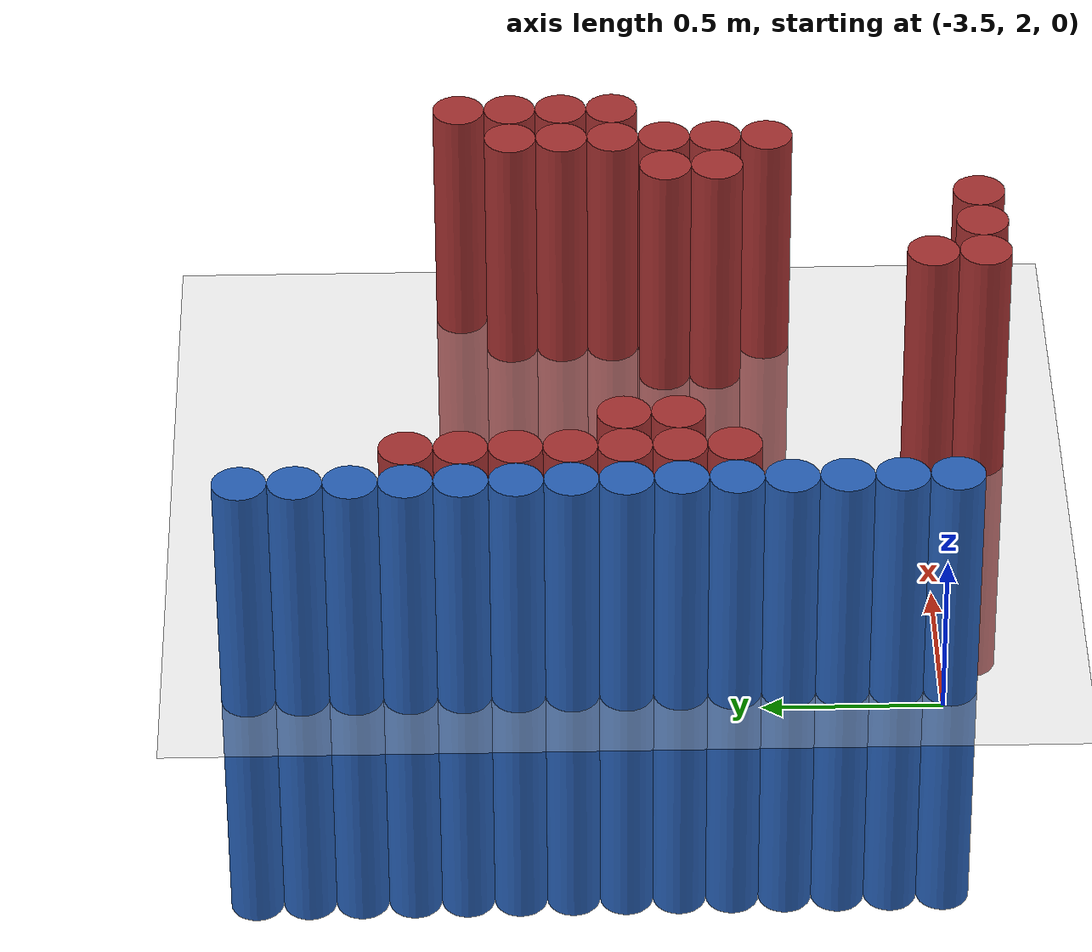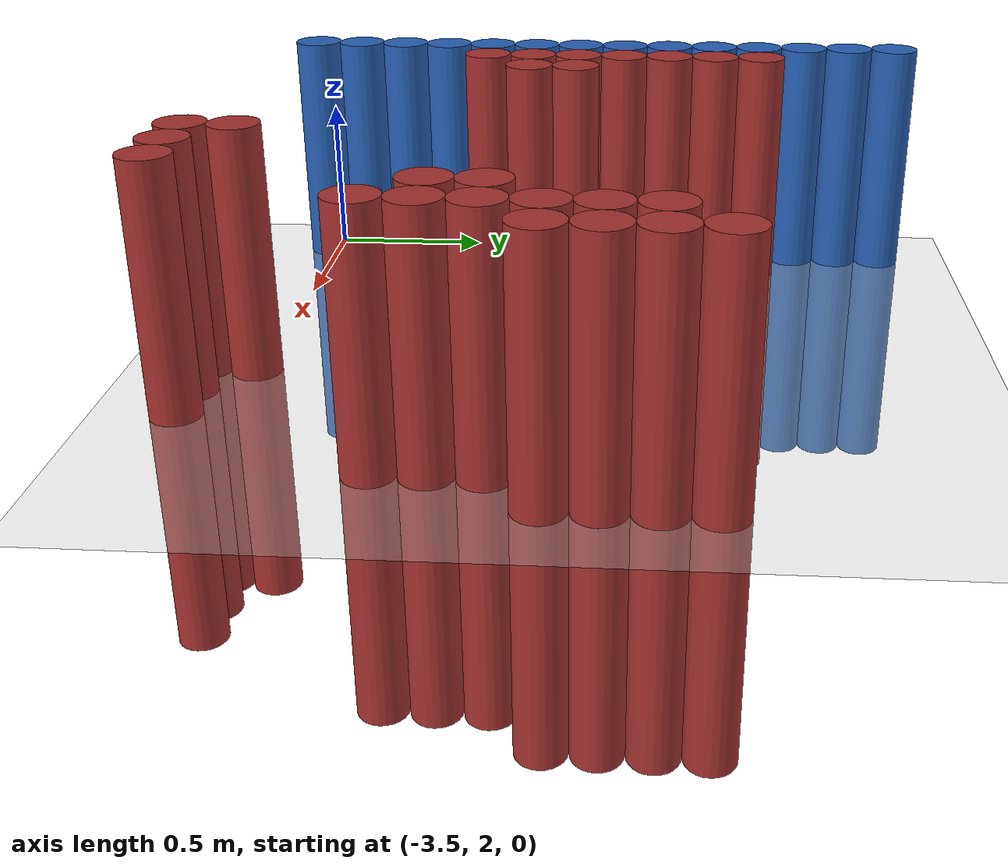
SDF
<sdf version="1.6">
 <world name="default">
  <model name="ground_plane">
   <static>1</static>
   <link name="link">
    <collision name="collision">
     <geometry><plane><normal>0 0 1</normal><size>100 100</size></plane></geometry>
     <surface><friction><ode><mu>100</mu><mu2>50</mu2></ode></friction></surface>
    </collision>
    <visual name="visual">
     <cast_shadows>0</cast_shadows>
     <geometry><plane><normal>0 0 1</normal><size>100 100</size></plane></geometry>
     <material>
      <script><uri>file://media/materials/scripts/gazebo.material</uri><name>Gazebo/Grey</name></script>
     </material>
    </visual>
   </link>
  </model>
  <model name="unit_cylinder_141">
   <static>1</static>
   <pose>-3.425000 1.975000 0.000000 0.000000 0.000000 0.000000</pose>
   <link name="link">
    <inertial>
     <mass>1</mass>
     <inertia><ixx>0.145833</ixx><ixy>0</ixy><ixz>0</ixz><iyy>0.145833</iyy><iyz>0</iyz><izz>0.125</izz></inertia>
    </inertial>
    <collision name="collision">
     <geometry><cylinder><radius>0.075000</radius><length>1.5</length></cylinder></geometry>
    </collision>
    <visual name="visual">
     <geometry><cylinder><radius>0.075000</radius><length>1.5</length></cylinder></geometry>
     <material>
      <ambient>0.152000 0.379000 0.720000 1</ambient>
      <diffuse>0.152000 0.379000 0.720000 1</diffuse>
     </material>
     <material>
      <script><name>Gazebo/Grey</name><uri>file://media/materials/scripts/gazebo.material</uri></script>
     </material>
    </visual>
   </link>
  </model>
  <model name="unit_cylinder_143">
   <static>1</static>
   <pose>-3.425000 2.125000 0.000000 0.000000 0.000000 0.000000</pose>
   <link name="link">
    <inertial>
     <mass>1</mass>
     <inertia><ixx>0.145833</ixx><ixy>0</ixy><ixz>0</ixz><iyy>0.145833</iyy><iyz>0</iyz><izz>0.125</izz></inertia>
    </inertial>
    <collision name="collision">
     <geometry><cylinder><radius>0.075000</radius><length>1.5</length></cylinder></geometry>
    </collision>
    <visual name="visual">
     <geometry><cylinder><radius>0.075000</radius><length>1.5</length></cylinder></geometry>
     <material>
      <ambient>0.152000 0.379000 0.720000 1</ambient>
      <diffuse>0.152000 0.379000 0.720000 1</diffuse>
     </material>
     <material>
      <script><name>Gazebo/Grey</name><uri>file://media/materials/scripts/gazebo.material</uri></script>
     </material>
    </visual>
   </link>
  </model>
  <model name="unit_cylinder_145">
   <static>1</static>
   <pose>-3.425000 2.275000 0.000000 0.000000 0.000000 0.000000</pose>
   <link name="link">
    <inertial>
     <mass>1</mass>
     <inertia><ixx>0.145833</ixx><ixy>0</ixy><ixz>0</ixz><iyy>0.145833</iyy><iyz>0</iyz><izz>0.125</izz></inertia>
    </inertial>
    <collision name="collision">
     <geometry><cylinder><radius>0.075000</radius><length>1.5</length></cylinder></geometry>
    </collision>
    <visual name="visual">
     <geometry><cylinder><radius>0.075000</radius><length>1.5</length></cylinder></geometry>
     <material>
      <ambient>0.152000 0.379000 0.720000 1</ambient>
      <diffuse>0.152000 0.379000 0.720000 1</diffuse>
     </material>
     <material>
      <script><name>Gazebo/Grey</name><uri>file://media/materials/scripts/gazebo.material</uri></script>
     </material>
    </visual>
   </link>
  </model>
  <model name="unit_cylinder_147">
   <static>1</static>
   <pose>-3.425000 2.425000 0.000000 0.000000 0.000000 0.000000</pose>
   <link name="link">
    <inertial>
     <mass>1</mass>
     <inertia><ixx>0.145833</ixx><ixy>0</ixy><ixz>0</ixz><iyy>0.145833</iyy><iyz>0</iyz><izz>0.125</izz></inertia>
    </inertial>
    <collision name="collision">
     <geometry><cylinder><radius>0.075000</radius><length>1.5</length></cylinder></geometry>
    </collision>
    <visual name="visual">
     <geometry><cylinder><radius>0.075000</radius><length>1.5</length></cylinder></geometry>
     <material>
      <ambient>0.152000 0.379000 0.720000 1</ambient>
      <diffuse>0.152000 0.379000 0.720000 1</diffuse>
     </material>
     <material>
      <script><name>Gazebo/Grey</name><uri>file://media/materials/scripts/gazebo.material</uri></script>
     </material>
    </visual>
   </link>
  </model>
  <model name="unit_cylinder_149">
   <static>1</static>
   <pose>-3.425000 2.575000 0.000000 0.000000 0.000000 0.000000</pose>
   <link name="link">
    <inertial>
     <mass>1</mass>
     <inertia><ixx>0.145833</ixx><ixy>0</ixy><ixz>0</ixz><iyy>0.145833</iyy><iyz>0</iyz><izz>0.125</izz></inertia>
    </inertial>
    <collision name="collision">
     <geometry><cylinder><radius>0.075000</radius><length>1.5</length></cylinder></geometry>
    </collision>
    <visual name="visual">
     <geometry><cylinder><radius>0.075000</radius><length>1.5</length></cylinder></geometry>
     <material>
      <ambient>0.152000 0.379000 0.720000 1</ambient>
      <diffuse>0.152000 0.379000 0.720000 1</diffuse>
     </material>
     <material>
      <script><name>Gazebo/Grey</name><uri>file://media/materials/scripts/gazebo.material</uri></script>
     </material>
    </visual>
   </link>
  </model>
  <model name="unit_cylinder_151">
   <static>1</static>
   <pose>-3.425000 2.725000 0.000000 0.000000 0.000000 0.000000</pose>
   <link name="link">
    <inertial>
     <mass>1</mass>
     <inertia><ixx>0.145833</ixx><ixy>0</ixy><ixz>0</ixz><iyy>0.145833</iyy><iyz>0</iyz><izz>0.125</izz></inertia>
    </inertial>
    <collision name="collision">
     <geometry><cylinder><radius>0.075000</radius><length>1.5</length></cylinder></geometry>
    </collision>
    <visual name="visual">
     <geometry><cylinder><radius>0.075000</radius><length>1.5</length></cylinder></geometry>
     <material>
      <ambient>0.152000 0.379000 0.720000 1</ambient>
      <diffuse>0.152000 0.379000 0.720000 1</diffuse>
     </material>
     <material>
      <script><name>Gazebo/Grey</name><uri>file://media/materials/scripts/gazebo.material</uri></script>
     </material>
    </visual>
   </link>
  </model>
  <model name="unit_cylinder_153">
   <static>1</static>
   <pose>-3.425000 2.875000 0.000000 0.000000 0.000000 0.000000</pose>
   <link name="link">
    <inertial>
     <mass>1</mass>
     <inertia><ixx>0.145833</ixx><ixy>0</ixy><ixz>0</ixz><iyy>0.145833</iyy><iyz>0</iyz><izz>0.125</izz></inertia>
    </inertial>
    <collision name="collision">
     <geometry><cylinder><radius>0.075000</radius><length>1.5</length></cylinder></geometry>
    </collision>
    <visual name="visual">
     <geometry><cylinder><radius>0.075000</radius><length>1.5</length></cylinder></geometry>
     <material>
      <ambient>0.152000 0.379000 0.720000 1</ambient>
      <diffuse>0.152000 0.379000 0.720000 1</diffuse>
     </material>
     <material>
      <script><name>Gazebo/Grey</name><uri>file://media/materials/scripts/gazebo.material</uri></script>
     </material>
    </visual>
   </link>
  </model>
  <model name="unit_cylinder_155">
   <static>1</static>
   <pose>-3.425000 3.025000 0.000000 0.000000 0.000000 0.000000</pose>
   <link name="link">
    <inertial>
     <mass>1</mass>
     <inertia><ixx>0.145833</ixx><ixy>0</ixy><ixz>0</ixz><iyy>0.145833</iyy><iyz>0</iyz><izz>0.125</izz></inertia>
    </inertial>
    <collision name="collision">
     <geometry><cylinder><radius>0.075000</radius><length>1.5</length></cylinder></geometry>
    </collision>
    <visual name="visual">
     <geometry><cylinder><radius>0.075000</radius><length>1.5</length></cylinder></geometry>
     <material>
      <ambient>0.152000 0.379000 0.720000 1</ambient>
      <diffuse>0.152000 0.379000 0.720000 1</diffuse>
     </material>
     <material>
      <script><name>Gazebo/Grey</name><uri>file://media/materials/scripts/gazebo.material</uri></script>
     </material>
    </visual>
   </link>
  </model>
  <model name="unit_cylinder_157">
   <static>1</static>
   <pose>-3.425000 3.175000 0.000000 0.000000 0.000000 0.000000</pose>
   <link name="link">
    <inertial>
     <mass>1</mass>
     <inertia><ixx>0.145833</ixx><ixy>0</ixy><ixz>0</ixz><iyy>0.145833</iyy><iyz>0</iyz><izz>0.125</izz></inertia>
    </inertial>
    <collision name="collision">
     <geometry><cylinder><radius>0.075000</radius><length>1.5</length></cylinder></geometry>
    </collision>
    <visual name="visual">
     <geometry><cylinder><radius>0.075000</radius><length>1.5</length></cylinder></geometry>
     <material>
      <ambient>0.152000 0.379000 0.720000 1</ambient>
      <diffuse>0.152000 0.379000 0.720000 1</diffuse>
     </material>
     <material>
      <script><name>Gazebo/Grey</name><uri>file://media/materials/scripts/gazebo.material</uri></script>
     </material>
    </visual>
   </link>
  </model>
  <model name="unit_cylinder_159">
   <static>1</static>
   <pose>-3.425000 3.325000 0.000000 0.000000 0.000000 0.000000</pose>
   <link name="link">
    <inertial>
     <mass>1</mass>
     <inertia><ixx>0.145833</ixx><ixy>0</ixy><ixz>0</ixz><iyy>0.145833</iyy><iyz>0</iyz><izz>0.125</izz></inertia>
    </inertial>
    <collision name="collision">
     <geometry><cylinder><radius>0.075000</radius><length>1.5</length></cylinder></geometry>
    </collision>
    <visual name="visual">
     <geometry><cylinder><radius>0.075000</radius><length>1.5</length></cylinder></geometry>
     <material>
      <ambient>0.152000 0.379000 0.720000 1</ambient>
      <diffuse>0.152000 0.379000 0.720000 1</diffuse>
     </material>
     <material>
      <script><name>Gazebo/Grey</name><uri>file://media/materials/scripts/gazebo.material</uri></script>
     </material>
    </visual>
   </link>
  </model>
  <model name="unit_cylinder_161">
   <static>1</static>
   <pose>-3.425000 3.475000 0.000000 0.000000 0.000000 0.000000</pose>
   <link name="link">
    <inertial>
     <mass>1</mass>
     <inertia><ixx>0.145833</ixx><ixy>0</ixy><ixz>0</ixz><iyy>0.145833</iyy><iyz>0</iyz><izz>0.125</izz></inertia>
    </inertial>
    <collision name="collision">
     <geometry><cylinder><radius>0.075000</radius><length>1.5</length></cylinder></geometry>
    </collision>
    <visual name="visual">
     <geometry><cylinder><radius>0.075000</radius><length>1.5</length></cylinder></geometry>
     <material>
      <ambient>0.152000 0.379000 0.720000 1</ambient>
      <diffuse>0.152000 0.379000 0.720000 1</diffuse>
     </material>
     <material>
      <script><name>Gazebo/Grey</name><uri>file://media/materials/scripts/gazebo.material</uri></script>
     </material>
    </visual>
   </link>
  </model>
  <model name="unit_cylinder_163">
   <static>1</static>
   <pose>-3.425000 3.625000 0.000000 0.000000 0.000000 0.000000</pose>
   <link name="link">
    <inertial>
     <mass>1</mass>
     <inertia><ixx>0.145833</ixx><ixy>0</ixy><ixz>0</ixz><iyy>0.145833</iyy><iyz>0</iyz><izz>0.125</izz></inertia>
    </inertial>
    <collision name="collision">
     <geometry><cylinder><radius>0.075000</radius><length>1.5</length></cylinder></geometry>
    </collision>
    <visual name="visual">
     <geometry><cylinder><radius>0.075000</radius><length>1.5</length></cylinder></geometry>
     <material>
      <ambient>0.152000 0.379000 0.720000 1</ambient>
      <diffuse>0.152000 0.379000 0.720000 1</diffuse>
     </material>
     <material>
      <script><name>Gazebo/Grey</name><uri>file://media/materials/scripts/gazebo.material</uri></script>
     </material>
    </visual>
   </link>
  </model>
  <model name="unit_cylinder_165">
   <static>1</static>
   <pose>-3.425000 3.775000 0.000000 0.000000 0.000000 0.000000</pose>
   <link name="link">
    <inertial>
     <mass>1</mass>
     <inertia><ixx>0.145833</ixx><ixy>0</ixy><ixz>0</ixz><iyy>0.145833</iyy><iyz>0</iyz><izz>0.125</izz></inertia>
    </inertial>
    <collision name="collision">
     <geometry><cylinder><radius>0.075000</radius><length>1.5</length></cylinder></geometry>
    </collision>
    <visual name="visual">
     <geometry><cylinder><radius>0.075000</radius><length>1.5</length></cylinder></geometry>
     <material>
      <ambient>0.152000 0.379000 0.720000 1</ambient>
      <diffuse>0.152000 0.379000 0.720000 1</diffuse>
     </material>
     <material>
      <script><name>Gazebo/Grey</name><uri>file://media/materials/scripts/gazebo.material</uri></script>
     </material>
    </visual>
   </link>
  </model>
  <model name="unit_cylinder_167">
   <static>1</static>
   <pose>-3.425000 3.925000 0.000000 0.000000 0.000000 0.000000</pose>
   <link name="link">
    <inertial>
     <mass>1</mass>
     <inertia><ixx>0.145833</ixx><ixy>0</ixy><ixz>0</ixz><iyy>0.145833</iyy><iyz>0</iyz><izz>0.125</izz></inertia>
    </inertial>
    <collision name="collision">
     <geometry><cylinder><radius>0.075000</radius><length>1.5</length></cylinder></geometry>
    </collision>
    <visual name="visual">
     <geometry><cylinder><radius>0.075000</radius><length>1.5</length></cylinder></geometry>
     <material>
      <ambient>0.152000 0.379000 0.720000 1</ambient>
      <diffuse>0.152000 0.379000 0.720000 1</diffuse>
     </material>
     <material>
      <script><name>Gazebo/Grey</name><uri>file://media/materials/scripts/gazebo.material</uri></script>
     </material>
    </visual>
   </link>
  </model>
  <model name="unit_cylinder_234">
   <static>1</static>
   <pose>-3.425000 1.975000 0.000000 0.000000 0.000000 0.000000</pose>
   <link name="link">
    <inertial>
     <mass>1</mass>
     <inertia><ixx>0.145833</ixx><ixy>0</ixy><ixz>0</ixz><iyy>0.145833</iyy><iyz>0</iyz><izz>0.125</izz></inertia>
    </inertial>
    <collision name="collision">
     <geometry><cylinder><radius>0.075000</radius><length>1.5</length></cylinder></geometry>
    </collision>
    <visual name="visual">
     <geometry><cylinder><radius>0.075000</radius><length>1.5</length></cylinder></geometry>
     <material>
      <ambient>0.152000 0.379000 0.720000 1</ambient>
      <diffuse>0.152000 0.379000 0.720000 1</diffuse>
     </material>
     <material>
      <script><name>Gazebo/Grey</name><uri>file://media/materials/scripts/gazebo.material</uri></script>
     </material>
    </visual>
   </link>
  </model>
  <model name="unit_cylinder_235">
   <static>1</static>
   <pose>-3.425000 2.125000 0.000000 0.000000 0.000000 0.000000</pose>
   <link name="link">
    <inertial>
     <mass>1</mass>
     <inertia><ixx>0.145833</ixx><ixy>0</ixy><ixz>0</ixz><iyy>0.145833</iyy><iyz>0</iyz><izz>0.125</izz></inertia>
    </inertial>
    <collision name="collision">
     <geometry><cylinder><radius>0.075000</radius><length>1.5</length></cylinder></geometry>
    </collision>
    <visual name="visual">
     <geometry><cylinder><radius>0.075000</radius><length>1.5</length></cylinder></geometry>
     <material>
      <ambient>0.152000 0.379000 0.720000 1</ambient>
      <diffuse>0.152000 0.379000 0.720000 1</diffuse>
     </material>
     <material>
      <script><name>Gazebo/Grey</name><uri>file://media/materials/scripts/gazebo.material</uri></script>
     </material>
    </visual>
   </link>
  </model>
  <model name="unit_cylinder_236">
   <static>1</static>
   <pose>-3.425000 2.275000 0.000000 0.000000 0.000000 0.000000</pose>
   <link name="link">
    <inertial>
     <mass>1</mass>
     <inertia><ixx>0.145833</ixx><ixy>0</ixy><ixz>0</ixz><iyy>0.145833</iyy><iyz>0</iyz><izz>0.125</izz></inertia>
    </inertial>
    <collision name="collision">
     <geometry><cylinder><radius>0.075000</radius><length>1.5</length></cylinder></geometry>
    </collision>
    <visual name="visual">
     <geometry><cylinder><radius>0.075000</radius><length>1.5</length></cylinder></geometry>
     <material>
      <ambient>0.152000 0.379000 0.720000 1</ambient>
      <diffuse>0.152000 0.379000 0.720000 1</diffuse>
     </material>
     <material>
      <script><name>Gazebo/Grey</name><uri>file://media/materials/scripts/gazebo.material</uri></script>
     </material>
    </visual>
   </link>
  </model>
  <model name="unit_cylinder_237">
   <static>1</static>
   <pose>-3.425000 2.425000 0.000000 0.000000 0.000000 0.000000</pose>
   <link name="link">
    <inertial>
     <mass>1</mass>
     <inertia><ixx>0.145833</ixx><ixy>0</ixy><ixz>0</ixz><iyy>0.145833</iyy><iyz>0</iyz><izz>0.125</izz></inertia>
    </inertial>
    <collision name="collision">
     <geometry><cylinder><radius>0.075000</radius><length>1.5</length></cylinder></geometry>
    </collision>
    <visual name="visual">
     <geometry><cylinder><radius>0.075000</radius><length>1.5</length></cylinder></geometry>
     <material>
      <ambient>0.152000 0.379000 0.720000 1</ambient>
      <diffuse>0.152000 0.379000 0.720000 1</diffuse>
     </material>
     <material>
      <script><name>Gazebo/Grey</name><uri>file://media/materials/scripts/gazebo.material</uri></script>
     </material>
    </visual>
   </link>
  </model>
  <model name="unit_cylinder_238">
   <static>1</static>
   <pose>-3.425000 2.575000 0.000000 0.000000 0.000000 0.000000</pose>
   <link name="link">
    <inertial>
     <mass>1</mass>
     <inertia><ixx>0.145833</ixx><ixy>0</ixy><ixz>0</ixz><iyy>0.145833</iyy><iyz>0</iyz><izz>0.125</izz></inertia>
    </inertial>
    <collision name="collision">
     <geometry><cylinder><radius>0.075000</radius><length>1.5</length></cylinder></geometry>
    </collision>
    <visual name="visual">
     <geometry><cylinder><radius>0.075000</radius><length>1.5</length></cylinder></geometry>
     <material>
      <ambient>0.152000 0.379000 0.720000 1</ambient>
      <diffuse>0.152000 0.379000 0.720000 1</diffuse>
     </material>
     <material>
      <script><name>Gazebo/Grey</name><uri>file://media/materials/scripts/gazebo.material</uri></script>
     </material>
    </visual>
   </link>
  </model>
  <model name="unit_cylinder_239">
   <static>1</static>
   <pose>-3.425000 2.725000 0.000000 0.000000 0.000000 0.000000</pose>
   <link name="link">
    <inertial>
     <mass>1</mass>
     <inertia><ixx>0.145833</ixx><ixy>0</ixy><ixz>0</ixz><iyy>0.145833</iyy><iyz>0</iyz><izz>0.125</izz></inertia>
    </inertial>
    <collision name="collision">
     <geometry><cylinder><radius>0.075000</radius><length>1.5</length></cylinder></geometry>
    </collision>
    <visual name="visual">
     <geometry><cylinder><radius>0.075000</radius><length>1.5</length></cylinder></geometry>
     <material>
      <ambient>0.152000 0.379000 0.720000 1</ambient>
      <diffuse>0.152000 0.379000 0.720000 1</diffuse>
     </material>
     <material>
      <script><name>Gazebo/Grey</name><uri>file://media/materials/scripts/gazebo.material</uri></script>
     </material>
    </visual>
   </link>
  </model>
  <model name="unit_cylinder_240">
   <static>1</static>
   <pose>-3.425000 2.875000 0.000000 0.000000 0.000000 0.000000</pose>
   <link name="link">
    <inertial>
     <mass>1</mass>
     <inertia><ixx>0.145833</ixx><ixy>0</ixy><ixz>0</ixz><iyy>0.145833</iyy><iyz>0</iyz><izz>0.125</izz></inertia>
    </inertial>
    <collision name="collision">
     <geometry><cylinder><radius>0.075000</radius><length>1.5</length></cylinder></geometry>
    </collision>
    <visual name="visual">
     <geometry><cylinder><radius>0.075000</radius><length>1.5</length></cylinder></geometry>
     <material>
      <ambient>0.152000 0.379000 0.720000 1</ambient>
      <diffuse>0.152000 0.379000 0.720000 1</diffuse>
     </material>
     <material>
      <script><name>Gazebo/Grey</name><uri>file://media/materials/scripts/gazebo.material</uri></script>
     </material>
    </visual>
   </link>
  </model>
  <model name="unit_cylinder_241">
   <static>1</static>
   <pose>-3.425000 3.025000 0.000000 0.000000 0.000000 0.000000</pose>
   <link name="link">
    <inertial>
     <mass>1</mass>
     <inertia><ixx>0.145833</ixx><ixy>0</ixy><ixz>0</ixz><iyy>0.145833</iyy><iyz>0</iyz><izz>0.125</izz></inertia>
    </inertial>
    <collision name="collision">
     <geometry><cylinder><radius>0.075000</radius><length>1.5</length></cylinder></geometry>
    </collision>
    <visual name="visual">
     <geometry><cylinder><radius>0.075000</radius><length>1.5</length></cylinder></geometry>
     <material>
      <ambient>0.152000 0.379000 0.720000 1</ambient>
      <diffuse>0.152000 0.379000 0.720000 1</diffuse>
     </material>
     <material>
      <script><name>Gazebo/Grey</name><uri>file://media/materials/scripts/gazebo.material</uri></script>
     </material>
    </visual>
   </link>
  </model>
  <model name="unit_cylinder_242">
   <static>1</static>
   <pose>-3.425000 3.175000 0.000000 0.000000 0.000000 0.000000</pose>
   <link name="link">
    <inertial>
     <mass>1</mass>
     <inertia><ixx>0.145833</ixx><ixy>0</ixy><ixz>0</ixz><iyy>0.145833</iyy><iyz>0</iyz><izz>0.125</izz></inertia>
    </inertial>
    <collision name="collision">
     <geometry><cylinder><radius>0.075000</radius><length>1.5</length></cylinder></geometry>
    </collision>
    <visual name="visual">
     <geometry><cylinder><radius>0.075000</radius><length>1.5</length></cylinder></geometry>
     <material>
      <ambient>0.152000 0.379000 0.720000 1</ambient>
      <diffuse>0.152000 0.379000 0.720000 1</diffuse>
     </material>
     <material>
      <script><name>Gazebo/Grey</name><uri>file://media/materials/scripts/gazebo.material</uri></script>
     </material>
    </visual>
   </link>
  </model>
  <model name="unit_cylinder_243">
   <static>1</static>
   <pose>-3.425000 3.325000 0.000000 0.000000 0.000000 0.000000</pose>
   <link name="link">
    <inertial>
     <mass>1</mass>
     <inertia><ixx>0.145833</ixx><ixy>0</ixy><ixz>0</ixz><iyy>0.145833</iyy><iyz>0</iyz><izz>0.125</izz></inertia>
    </inertial>
    <collision name="collision">
     <geometry><cylinder><radius>0.075000</radius><length>1.5</length></cylinder></geometry>
    </collision>
    <visual name="visual">
     <geometry><cylinder><radius>0.075000</radius><length>1.5</length></cylinder></geometry>
     <material>
      <ambient>0.152000 0.379000 0.720000 1</ambient>
      <diffuse>0.152000 0.379000 0.720000 1</diffuse>
     </material>
     <material>
      <script><name>Gazebo/Grey</name><uri>file://media/materials/scripts/gazebo.material</uri></script>
     </material>
    </visual>
   </link>
  </model>
  <model name="unit_cylinder_244">
   <static>1</static>
   <pose>-3.425000 3.475000 0.000000 0.000000 0.000000 0.000000</pose>
   <link name="link">
    <inertial>
     <mass>1</mass>
     <inertia><ixx>0.145833</ixx><ixy>0</ixy><ixz>0</ixz><iyy>0.145833</iyy><iyz>0</iyz><izz>0.125</izz></inertia>
    </inertial>
    <collision name="collision">
     <geometry><cylinder><radius>0.075000</radius><length>1.5</length></cylinder></geometry>
    </collision>
    <visual name="visual">
     <geometry><cylinder><radius>0.075000</radius><length>1.5</length></cylinder></geometry>
     <material>
      <ambient>0.152000 0.379000 0.720000 1</ambient>
      <diffuse>0.152000 0.379000 0.720000 1</diffuse>
     </material>
     <material>
      <script><name>Gazebo/Grey</name><uri>file://media/materials/scripts/gazebo.material</uri></script>
     </material>
    </visual>
   </link>
  </model>
  <model name="unit_cylinder_245">
   <static>1</static>
   <pose>-3.425000 3.625000 0.000000 0.000000 0.000000 0.000000</pose>
   <link name="link">
    <inertial>
     <mass>1</mass>
     <inertia><ixx>0.145833</ixx><ixy>0</ixy><ixz>0</ixz><iyy>0.145833</iyy><iyz>0</iyz><izz>0.125</izz></inertia>
    </inertial>
    <collision name="collision">
     <geometry><cylinder><radius>0.075000</radius><length>1.5</length></cylinder></geometry>
    </collision>
    <visual name="visual">
     <geometry><cylinder><radius>0.075000</radius><length>1.5</length></cylinder></geometry>
     <material>
      <ambient>0.152000 0.379000 0.720000 1</ambient>
      <diffuse>0.152000 0.379000 0.720000 1</diffuse>
     </material>
     <material>
      <script><name>Gazebo/Grey</name><uri>file://media/materials/scripts/gazebo.material</uri></script>
     </material>
    </visual>
   </link>
  </model>
  <model name="unit_cylinder_246">
   <static>1</static>
   <pose>-3.425000 3.775000 0.000000 0.000000 0.000000 0.000000</pose>
   <link name="link">
    <inertial>
     <mass>1</mass>
     <inertia><ixx>0.145833</ixx><ixy>0</ixy><ixz>0</ixz><iyy>0.145833</iyy><iyz>0</iyz><izz>0.125</izz></inertia>
    </inertial>
    <collision name="collision">
     <geometry><cylinder><radius>0.075000</radius><length>1.5</length></cylinder></geometry>
    </collision>
    <visual name="visual">
     <geometry><cylinder><radius>0.075000</radius><length>1.5</length></cylinder></geometry>
     <material>
      <ambient>0.152000 0.379000 0.720000 1</ambient>
      <diffuse>0.152000 0.379000 0.720000 1</diffuse>
     </material>
     <material>
      <script><name>Gazebo/Grey</name><uri>file://media/materials/scripts/gazebo.material</uri></script>
     </material>
    </visual>
   </link>
  </model>
  <model name="unit_cylinder_247">
   <static>1</static>
   <pose>-3.425000 3.925000 0.000000 0.000000 0.000000 0.000000</pose>
   <link name="link">
    <inertial>
     <mass>1</mass>
     <inertia><ixx>0.145833</ixx><ixy>0</ixy><ixz>0</ixz><iyy>0.145833</iyy><iyz>0</iyz><izz>0.125</izz></inertia>
    </inertial>
    <collision name="collision">
     <geometry><cylinder><radius>0.075000</radius><length>1.5</length></cylinder></geometry>
    </collision>
    <visual name="visual">
     <geometry><cylinder><radius>0.075000</radius><length>1.5</length></cylinder></geometry>
     <material>
      <ambient>0.152000 0.379000 0.720000 1</ambient>
      <diffuse>0.152000 0.379000 0.720000 1</diffuse>
     </material>
     <material>
      <script><name>Gazebo/Grey</name><uri>file://media/materials/scripts/gazebo.material</uri></script>
     </material>
    </visual>
   </link>
  </model>
  <model name="unit_cylinder_270">
   <static>1</static>
   <pose>-3.275000 2.575000 0.000000 0.000000 0.000000 0.000000</pose>
   <link name="link">
    <inertial>
     <mass>1</mass>
     <inertia><ixx>0.145833</ixx><ixy>0</ixy><ixz>0</ixz><iyy>0.145833</iyy><iyz>0</iyz><izz>0.125</izz></inertia>
    </inertial>
    <collision name="collision">
     <geometry><cylinder><radius>0.075000</radius><length>1.5</length></cylinder></geometry>
    </collision>
    <visual name="visual">
     <geometry><cylinder><radius>0.075000</radius><length>1.5</length></cylinder></geometry>
     <material>
      <ambient>0.648000 0.192000 0.192000 1</ambient>
      <diffuse>0.648000 0.192000 0.192000 1</diffuse>
     </material>
     <material>
      <script><name>Gazebo/Grey</name><uri>file://media/materials/scripts/gazebo.material</uri></script>
     </material>
    </visual>
   </link>
  </model>
  <model name="unit_cylinder_271">
   <static>1</static>
   <pose>-3.275000 2.725000 0.000000 0.000000 0.000000 0.000000</pose>
   <link name="link">
    <inertial>
     <mass>1</mass>
     <inertia><ixx>0.145833</ixx><ixy>0</ixy><ixz>0</ixz><iyy>0.145833</iyy><iyz>0</iyz><izz>0.125</izz></inertia>
    </inertial>
    <collision name="collision">
     <geometry><cylinder><radius>0.075000</radius><length>1.5</length></cylinder></geometry>
    </collision>
    <visual name="visual">
     <geometry><cylinder><radius>0.075000</radius><length>1.5</length></cylinder></geometry>
     <material>
      <ambient>0.648000 0.192000 0.192000 1</ambient>
      <diffuse>0.648000 0.192000 0.192000 1</diffuse>
     </material>
     <material>
      <script><name>Gazebo/Grey</name><uri>file://media/materials/scripts/gazebo.material</uri></script>
     </material>
    </visual>
   </link>
  </model>
  <model name="unit_cylinder_272">
   <static>1</static>
   <pose>-3.275000 2.875000 0.000000 0.000000 0.000000 0.000000</pose>
   <link name="link">
    <inertial>
     <mass>1</mass>
     <inertia><ixx>0.145833</ixx><ixy>0</ixy><ixz>0</ixz><iyy>0.145833</iyy><iyz>0</iyz><izz>0.125</izz></inertia>
    </inertial>
    <collision name="collision">
     <geometry><cylinder><radius>0.075000</radius><length>1.5</length></cylinder></geometry>
    </collision>
    <visual name="visual">
     <geometry><cylinder><radius>0.075000</radius><length>1.5</length></cylinder></geometry>
     <material>
      <ambient>0.648000 0.192000 0.192000 1</ambient>
      <diffuse>0.648000 0.192000 0.192000 1</diffuse>
     </material>
     <material>
      <script><name>Gazebo/Grey</name><uri>file://media/materials/scripts/gazebo.material</uri></script>
     </material>
    </visual>
   </link>
  </model>
  <model name="unit_cylinder_273">
   <static>1</static>
   <pose>-3.275000 3.025000 0.000000 0.000000 0.000000 0.000000</pose>
   <link name="link">
    <inertial>
     <mass>1</mass>
     <inertia><ixx>0.145833</ixx><ixy>0</ixy><ixz>0</ixz><iyy>0.145833</iyy><iyz>0</iyz><izz>0.125</izz></inertia>
    </inertial>
    <collision name="collision">
     <geometry><cylinder><radius>0.075000</radius><length>1.5</length></cylinder></geometry>
    </collision>
    <visual name="visual">
     <geometry><cylinder><radius>0.075000</radius><length>1.5</length></cylinder></geometry>
     <material>
      <ambient>0.648000 0.192000 0.192000 1</ambient>
      <diffuse>0.648000 0.192000 0.192000 1</diffuse>
     </material>
     <material>
      <script><name>Gazebo/Grey</name><uri>file://media/materials/scripts/gazebo.material</uri></script>
     </material>
    </visual>
   </link>
  </model>
  <model name="unit_cylinder_274">
   <static>1</static>
   <pose>-3.275000 3.175000 0.000000 0.000000 0.000000 0.000000</pose>
   <link name="link">
    <inertial>
     <mass>1</mass>
     <inertia><ixx>0.145833</ixx><ixy>0</ixy><ixz>0</ixz><iyy>0.145833</iyy><iyz>0</iyz><izz>0.125</izz></inertia>
    </inertial>
    <collision name="collision">
     <geometry><cylinder><radius>0.075000</radius><length>1.5</length></cylinder></geometry>
    </collision>
    <visual name="visual">
     <geometry><cylinder><radius>0.075000</radius><length>1.5</length></cylinder></geometry>
     <material>
      <ambient>0.648000 0.192000 0.192000 1</ambient>
      <diffuse>0.648000 0.192000 0.192000 1</diffuse>
     </material>
     <material>
      <script><name>Gazebo/Grey</name><uri>file://media/materials/scripts/gazebo.material</uri></script>
     </material>
    </visual>
   </link>
  </model>
  <model name="unit_cylinder_275">
   <static>1</static>
   <pose>-3.275000 3.325000 0.000000 0.000000 0.000000 0.000000</pose>
   <link name="link">
    <inertial>
     <mass>1</mass>
     <inertia><ixx>0.145833</ixx><ixy>0</ixy><ixz>0</ixz><iyy>0.145833</iyy><iyz>0</iyz><izz>0.125</izz></inertia>
    </inertial>
    <collision name="collision">
     <geometry><cylinder><radius>0.075000</radius><length>1.5</length></cylinder></geometry>
    </collision>
    <visual name="visual">
     <geometry><cylinder><radius>0.075000</radius><length>1.5</length></cylinder></geometry>
     <material>
      <ambient>0.648000 0.192000 0.192000 1</ambient>
      <diffuse>0.648000 0.192000 0.192000 1</diffuse>
     </material>
     <material>
      <script><name>Gazebo/Grey</name><uri>file://media/materials/scripts/gazebo.material</uri></script>
     </material>
    </visual>
   </link>
  </model>
  <model name="unit_cylinder_276">
   <static>1</static>
   <pose>-3.275000 3.475000 0.000000 0.000000 0.000000 0.000000</pose>
   <link name="link">
    <inertial>
     <mass>1</mass>
     <inertia><ixx>0.145833</ixx><ixy>0</ixy><ixz>0</ixz><iyy>0.145833</iyy><iyz>0</iyz><izz>0.125</izz></inertia>
    </inertial>
    <collision name="collision">
     <geometry><cylinder><radius>0.075000</radius><length>1.5</length></cylinder></geometry>
    </collision>
    <visual name="visual">
     <geometry><cylinder><radius>0.075000</radius><length>1.5</length></cylinder></geometry>
     <material>
      <ambient>0.648000 0.192000 0.192000 1</ambient>
      <diffuse>0.648000 0.192000 0.192000 1</diffuse>
     </material>
     <material>
      <script><name>Gazebo/Grey</name><uri>file://media/materials/scripts/gazebo.material</uri></script>
     </material>
    </visual>
   </link>
  </model>
  <model name="unit_cylinder_287">
   <static>1</static>
   <pose>-3.125000 2.725000 0.000000 0.000000 0.000000 0.000000</pose>
   <link name="link">
    <inertial>
     <mass>1</mass>
     <inertia><ixx>0.145833</ixx><ixy>0</ixy><ixz>0</ixz><iyy>0.145833</iyy><iyz>0</iyz><izz>0.125</izz></inertia>
    </inertial>
    <collision name="collision">
     <geometry><cylinder><radius>0.075000</radius><length>1.5</length></cylinder></geometry>
    </collision>
    <visual name="visual">
     <geometry><cylinder><radius>0.075000</radius><length>1.5</length></cylinder></geometry>
     <material>
      <ambient>0.648000 0.192000 0.192000 1</ambient>
      <diffuse>0.648000 0.192000 0.192000 1</diffuse>
     </material>
     <material>
      <script><name>Gazebo/Grey</name><uri>file://media/materials/scripts/gazebo.material</uri></script>
     </material>
    </visual>
   </link>
  </model>
  <model name="unit_cylinder_288">
   <static>1</static>
   <pose>-3.125000 2.875000 0.000000 0.000000 0.000000 0.000000</pose>
   <link name="link">
    <inertial>
     <mass>1</mass>
     <inertia><ixx>0.145833</ixx><ixy>0</ixy><ixz>0</ixz><iyy>0.145833</iyy><iyz>0</iyz><izz>0.125</izz></inertia>
    </inertial>
    <collision name="collision">
     <geometry><cylinder><radius>0.075000</radius><length>1.5</length></cylinder></geometry>
    </collision>
    <visual name="visual">
     <geometry><cylinder><radius>0.075000</radius><length>1.5</length></cylinder></geometry>
     <material>
      <ambient>0.648000 0.192000 0.192000 1</ambient>
      <diffuse>0.648000 0.192000 0.192000 1</diffuse>
     </material>
     <material>
      <script><name>Gazebo/Grey</name><uri>file://media/materials/scripts/gazebo.material</uri></script>
     </material>
    </visual>
   </link>
  </model>
  <model name="unit_cylinder_302">
   <static>1</static>
   <pose>-2.375000 1.825000 0.000000 0.000000 0.000000 0.000000</pose>
   <link name="link">
    <inertial>
     <mass>1</mass>
     <inertia><ixx>0.145833</ixx><ixy>0</ixy><ixz>0</ixz><iyy>0.145833</iyy><iyz>0</iyz><izz>0.125</izz></inertia>
    </inertial>
    <collision name="collision">
     <geometry><cylinder><radius>0.075000</radius><length>1.5</length></cylinder></geometry>
    </collision>
    <visual name="visual">
     <geometry><cylinder><radius>0.075000</radius><length>1.5</length></cylinder></geometry>
     <material>
      <ambient>0.648000 0.192000 0.192000 1</ambient>
      <diffuse>0.648000 0.192000 0.192000 1</diffuse>
     </material>
     <material>
      <script><name>Gazebo/Grey</name><uri>file://media/materials/scripts/gazebo.material</uri></script>
     </material>
    </visual>
   </link>
  </model>
  <model name="unit_cylinder_303">
   <static>1</static>
   <pose>-2.375000 1.975000 0.000000 0.000000 0.000000 0.000000</pose>
   <link name="link">
    <inertial>
     <mass>1</mass>
     <inertia><ixx>0.145833</ixx><ixy>0</ixy><ixz>0</ixz><iyy>0.145833</iyy><iyz>0</iyz><izz>0.125</izz></inertia>
    </inertial>
    <collision name="collision">
     <geometry><cylinder><radius>0.075000</radius><length>1.5</length></cylinder></geometry>
    </collision>
    <visual name="visual">
     <geometry><cylinder><radius>0.075000</radius><length>1.5</length></cylinder></geometry>
     <material>
      <ambient>0.648000 0.192000 0.192000 1</ambient>
      <diffuse>0.648000 0.192000 0.192000 1</diffuse>
     </material>
     <material>
      <script><name>Gazebo/Grey</name><uri>file://media/materials/scripts/gazebo.material</uri></script>
     </material>
    </visual>
   </link>
  </model>
  <model name="unit_cylinder_308">
   <static>1</static>
   <pose>-2.225000 1.825000 0.000000 0.000000 0.000000 0.000000</pose>
   <link name="link">
    <inertial>
     <mass>1</mass>
     <inertia><ixx>0.145833</ixx><ixy>0</ixy><ixz>0</ixz><iyy>0.145833</iyy><iyz>0</iyz><izz>0.125</izz></inertia>
    </inertial>
    <collision name="collision">
     <geometry><cylinder><radius>0.075000</radius><length>1.5</length></cylinder></geometry>
    </collision>
    <visual name="visual">
     <geometry><cylinder><radius>0.075000</radius><length>1.5</length></cylinder></geometry>
     <material>
      <ambient>0.648000 0.192000 0.192000 1</ambient>
      <diffuse>0.648000 0.192000 0.192000 1</diffuse>
     </material>
     <material>
      <script><name>Gazebo/Grey</name><uri>file://media/materials/scripts/gazebo.material</uri></script>
     </material>
    </visual>
   </link>
  </model>
  <model name="unit_cylinder_315">
   <static>1</static>
   <pose>-2.075000 1.825000 0.000000 0.000000 0.000000 0.000000</pose>
   <link name="link">
    <inertial>
     <mass>1</mass>
     <inertia><ixx>0.145833</ixx><ixy>0</ixy><ixz>0</ixz><iyy>0.145833</iyy><iyz>0</iyz><izz>0.125</izz></inertia>
    </inertial>
    <collision name="collision">
     <geometry><cylinder><radius>0.075000</radius><length>1.5</length></cylinder></geometry>
    </collision>
    <visual name="visual">
     <geometry><cylinder><radius>0.075000</radius><length>1.5</length></cylinder></geometry>
     <material>
      <ambient>0.648000 0.192000 0.192000 1</ambient>
      <diffuse>0.648000 0.192000 0.192000 1</diffuse>
     </material>
     <material>
      <script><name>Gazebo/Grey</name><uri>file://media/materials/scripts/gazebo.material</uri></script>
     </material>
    </visual>
   </link>
  </model>
  <model name="unit_cylinder_324">
   <static>1</static>
   <pose>-1.925000 2.575000 0.000000 0.000000 0.000000 0.000000</pose>
   <link name="link">
    <inertial>
     <mass>1</mass>
     <inertia><ixx>0.145833</ixx><ixy>0</ixy><ixz>0</ixz><iyy>0.145833</iyy><iyz>0</iyz><izz>0.125</izz></inertia>
    </inertial>
    <collision name="collision">
     <geometry><cylinder><radius>0.075000</radius><length>1.5</length></cylinder></geometry>
    </collision>
    <visual name="visual">
     <geometry><cylinder><radius>0.075000</radius><length>1.5</length></cylinder></geometry>
     <material>
      <ambient>0.648000 0.192000 0.192000 1</ambient>
      <diffuse>0.648000 0.192000 0.192000 1</diffuse>
     </material>
     <material>
      <script><name>Gazebo/Grey</name><uri>file://media/materials/scripts/gazebo.material</uri></script>
     </material>
    </visual>
   </link>
  </model>
  <model name="unit_cylinder_325">
   <static>1</static>
   <pose>-1.925000 2.725000 0.000000 0.000000 0.000000 0.000000</pose>
   <link name="link">
    <inertial>
     <mass>1</mass>
     <inertia><ixx>0.145833</ixx><ixy>0</ixy><ixz>0</ixz><iyy>0.145833</iyy><iyz>0</iyz><izz>0.125</izz></inertia>
    </inertial>
    <collision name="collision">
     <geometry><cylinder><radius>0.075000</radius><length>1.5</length></cylinder></geometry>
    </collision>
    <visual name="visual">
     <geometry><cylinder><radius>0.075000</radius><length>1.5</length></cylinder></geometry>
     <material>
      <ambient>0.648000 0.192000 0.192000 1</ambient>
      <diffuse>0.648000 0.192000 0.192000 1</diffuse>
     </material>
     <material>
      <script><name>Gazebo/Grey</name><uri>file://media/materials/scripts/gazebo.material</uri></script>
     </material>
    </visual>
   </link>
  </model>
  <model name="unit_cylinder_330">
   <static>1</static>
   <pose>-1.775000 2.425000 0.000000 0.000000 0.000000 0.000000</pose>
   <link name="link">
    <inertial>
     <mass>1</mass>
     <inertia><ixx>0.145833</ixx><ixy>0</ixy><ixz>0</ixz><iyy>0.145833</iyy><iyz>0</iyz><izz>0.125</izz></inertia>
    </inertial>
    <collision name="collision">
     <geometry><cylinder><radius>0.075000</radius><length>1.5</length></cylinder></geometry>
    </collision>
    <visual name="visual">
     <geometry><cylinder><radius>0.075000</radius><length>1.5</length></cylinder></geometry>
     <material>
      <ambient>0.648000 0.192000 0.192000 1</ambient>
      <diffuse>0.648000 0.192000 0.192000 1</diffuse>
     </material>
     <material>
      <script><name>Gazebo/Grey</name><uri>file://media/materials/scripts/gazebo.material</uri></script>
     </material>
    </visual>
   </link>
  </model>
  <model name="unit_cylinder_331">
   <static>1</static>
   <pose>-1.775000 2.575000 0.000000 0.000000 0.000000 0.000000</pose>
   <link name="link">
    <inertial>
     <mass>1</mass>
     <inertia><ixx>0.145833</ixx><ixy>0</ixy><ixz>0</ixz><iyy>0.145833</iyy><iyz>0</iyz><izz>0.125</izz></inertia>
    </inertial>
    <collision name="collision">
     <geometry><cylinder><radius>0.075000</radius><length>1.5</length></cylinder></geometry>
    </collision>
    <visual name="visual">
     <geometry><cylinder><radius>0.075000</radius><length>1.5</length></cylinder></geometry>
     <material>
      <ambient>0.648000 0.192000 0.192000 1</ambient>
      <diffuse>0.648000 0.192000 0.192000 1</diffuse>
     </material>
     <material>
      <script><name>Gazebo/Grey</name><uri>file://media/materials/scripts/gazebo.material</uri></script>
     </material>
    </visual>
   </link>
  </model>
  <model name="unit_cylinder_332">
   <static>1</static>
   <pose>-1.775000 2.725000 0.000000 0.000000 0.000000 0.000000</pose>
   <link name="link">
    <inertial>
     <mass>1</mass>
     <inertia><ixx>0.145833</ixx><ixy>0</ixy><ixz>0</ixz><iyy>0.145833</iyy><iyz>0</iyz><izz>0.125</izz></inertia>
    </inertial>
    <collision name="collision">
     <geometry><cylinder><radius>0.075000</radius><length>1.5</length></cylinder></geometry>
    </collision>
    <visual name="visual">
     <geometry><cylinder><radius>0.075000</radius><length>1.5</length></cylinder></geometry>
     <material>
      <ambient>0.648000 0.192000 0.192000 1</ambient>
      <diffuse>0.648000 0.192000 0.192000 1</diffuse>
     </material>
     <material>
      <script><name>Gazebo/Grey</name><uri>file://media/materials/scripts/gazebo.material</uri></script>
     </material>
    </visual>
   </link>
  </model>
  <model name="unit_cylinder_333">
   <static>1</static>
   <pose>-1.775000 2.875000 0.000000 0.000000 0.000000 0.000000</pose>
   <link name="link">
    <inertial>
     <mass>1</mass>
     <inertia><ixx>0.145833</ixx><ixy>0</ixy><ixz>0</ixz><iyy>0.145833</iyy><iyz>0</iyz><izz>0.125</izz></inertia>
    </inertial>
    <collision name="collision">
     <geometry><cylinder><radius>0.075000</radius><length>1.5</length></cylinder></geometry>
    </collision>
    <visual name="visual">
     <geometry><cylinder><radius>0.075000</radius><length>1.5</length></cylinder></geometry>
     <material>
      <ambient>0.648000 0.192000 0.192000 1</ambient>
      <diffuse>0.648000 0.192000 0.192000 1</diffuse>
     </material>
     <material>
      <script><name>Gazebo/Grey</name><uri>file://media/materials/scripts/gazebo.material</uri></script>
     </material>
    </visual>
   </link>
  </model>
  <model name="unit_cylinder_334">
   <static>1</static>
   <pose>-1.775000 3.025000 0.000000 0.000000 0.000000 0.000000</pose>
   <link name="link">
    <inertial>
     <mass>1</mass>
     <inertia><ixx>0.145833</ixx><ixy>0</ixy><ixz>0</ixz><iyy>0.145833</iyy><iyz>0</iyz><izz>0.125</izz></inertia>
    </inertial>
    <collision name="collision">
     <geometry><cylinder><radius>0.075000</radius><length>1.5</length></cylinder></geometry>
    </collision>
    <visual name="visual">
     <geometry><cylinder><radius>0.075000</radius><length>1.5</length></cylinder></geometry>
     <material>
      <ambient>0.648000 0.192000 0.192000 1</ambient>
      <diffuse>0.648000 0.192000 0.192000 1</diffuse>
     </material>
     <material>
      <script><name>Gazebo/Grey</name><uri>file://media/materials/scripts/gazebo.material</uri></script>
     </material>
    </visual>
   </link>
  </model>
  <model name="unit_cylinder_335">
   <static>1</static>
   <pose>-1.775000 3.175000 0.000000 0.000000 0.000000 0.000000</pose>
   <link name="link">
    <inertial>
     <mass>1</mass>
     <inertia><ixx>0.145833</ixx><ixy>0</ixy><ixz>0</ixz><iyy>0.145833</iyy><iyz>0</iyz><izz>0.125</izz></inertia>
    </inertial>
    <collision name="collision">
     <geometry><cylinder><radius>0.075000</radius><length>1.5</length></cylinder></geometry>
    </collision>
    <visual name="visual">
     <geometry><cylinder><radius>0.075000</radius><length>1.5</length></cylinder></geometry>
     <material>
      <ambient>0.648000 0.192000 0.192000 1</ambient>
      <diffuse>0.648000 0.192000 0.192000 1</diffuse>
     </material>
     <material>
      <script><name>Gazebo/Grey</name><uri>file://media/materials/scripts/gazebo.material</uri></script>
     </material>
    </visual>
   </link>
  </model>
  <model name="unit_cylinder_338">
   <static>1</static>
   <pose>-1.625000 2.875000 0.000000 0.000000 0.000000 0.000000</pose>
   <link name="link">
    <inertial>
     <mass>1</mass>
     <inertia><ixx>0.145833</ixx><ixy>0</ixy><ixz>0</ixz><iyy>0.145833</iyy><iyz>0</iyz><izz>0.125</izz></inertia>
    </inertial>
    <collision name="collision">
     <geometry><cylinder><radius>0.075000</radius><length>1.5</length></cylinder></geometry>
    </collision>
    <visual name="visual">
     <geometry><cylinder><radius>0.075000</radius><length>1.5</length></cylinder></geometry>
     <material>
      <ambient>0.648000 0.192000 0.192000 1</ambient>
      <diffuse>0.648000 0.192000 0.192000 1</diffuse>
     </material>
     <material>
      <script><name>Gazebo/Grey</name><uri>file://media/materials/scripts/gazebo.material</uri></script>
     </material>
    </visual>
   </link>
  </model>
  <model name="unit_cylinder_339">
   <static>1</static>
   <pose>-1.625000 3.025000 0.000000 0.000000 0.000000 0.000000</pose>
   <link name="link">
    <inertial>
     <mass>1</mass>
     <inertia><ixx>0.145833</ixx><ixy>0</ixy><ixz>0</ixz><iyy>0.145833</iyy><iyz>0</iyz><izz>0.125</izz></inertia>
    </inertial>
    <collision name="collision">
     <geometry><cylinder><radius>0.075000</radius><length>1.5</length></cylinder></geometry>
    </collision>
    <visual name="visual">
     <geometry><cylinder><radius>0.075000</radius><length>1.5</length></cylinder></geometry>
     <material>
      <ambient>0.648000 0.192000 0.192000 1</ambient>
      <diffuse>0.648000 0.192000 0.192000 1</diffuse>
     </material>
     <material>
      <script><name>Gazebo/Grey</name><uri>file://media/materials/scripts/gazebo.material</uri></script>
     </material>
    </visual>
   </link>
  </model>
  <model name="unit_cylinder_340">
   <static>1</static>
   <pose>-1.625000 3.175000 0.000000 0.000000 0.000000 0.000000</pose>
   <link name="link">
    <inertial>
     <mass>1</mass>
     <inertia><ixx>0.145833</ixx><ixy>0</ixy><ixz>0</ixz><iyy>0.145833</iyy><iyz>0</iyz><izz>0.125</izz></inertia>
    </inertial>
    <collision name="collision">
     <geometry><cylinder><radius>0.075000</radius><length>1.5</length></cylinder></geometry>
    </collision>
    <visual name="visual">
     <geometry><cylinder><radius>0.075000</radius><length>1.5</length></cylinder></geometry>
     <material>
      <ambient>0.648000 0.192000 0.192000 1</ambient>
      <diffuse>0.648000 0.192000 0.192000 1</diffuse>
     </material>
     <material>
      <script><name>Gazebo/Grey</name><uri>file://media/materials/scripts/gazebo.material</uri></script>
     </material>
    </visual>
   </link>
  </model>
  <model name="unit_cylinder_341">
   <static>1</static>
   <pose>-1.625000 3.325000 0.000000 0.000000 0.000000 0.000000</pose>
   <link name="link">
    <inertial>
     <mass>1</mass>
     <inertia><ixx>0.145833</ixx><ixy>0</ixy><ixz>0</ixz><iyy>0.145833</iyy><iyz>0</iyz><izz>0.125</izz></inertia>
    </inertial>
    <collision name="collision">
     <geometry><cylinder><radius>0.075000</radius><length>1.5</length></cylinder></geometry>
    </collision>
    <visual name="visual">
     <geometry><cylinder><radius>0.075000</radius><length>1.5</length></cylinder></geometry>
     <material>
      <ambient>0.648000 0.192000 0.192000 1</ambient>
      <diffuse>0.648000 0.192000 0.192000 1</diffuse>
     </material>
     <material>
      <script><name>Gazebo/Grey</name><uri>file://media/materials/scripts/gazebo.material</uri></script>
     </material>
    </visual>
   </link>
  </model>
 </world>
</sdf>
